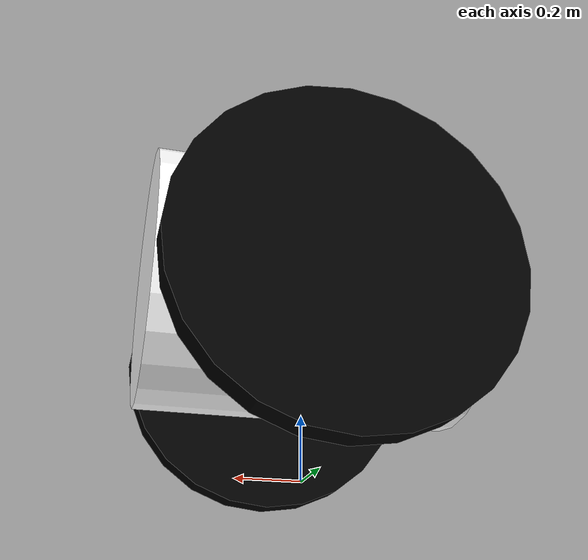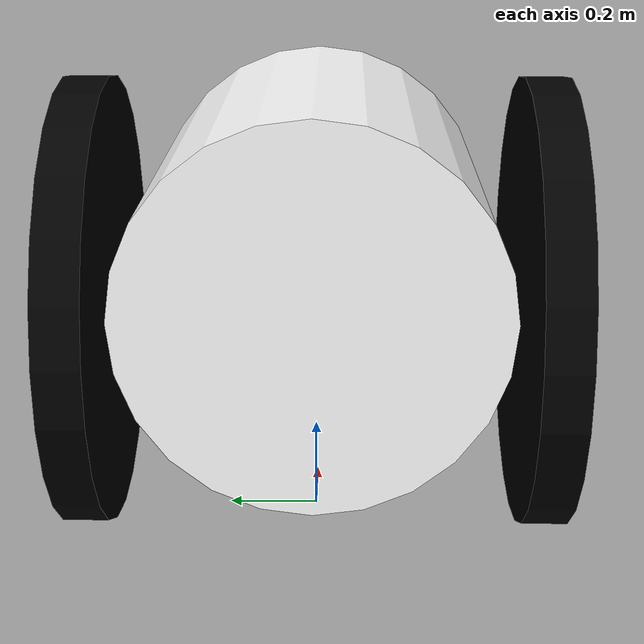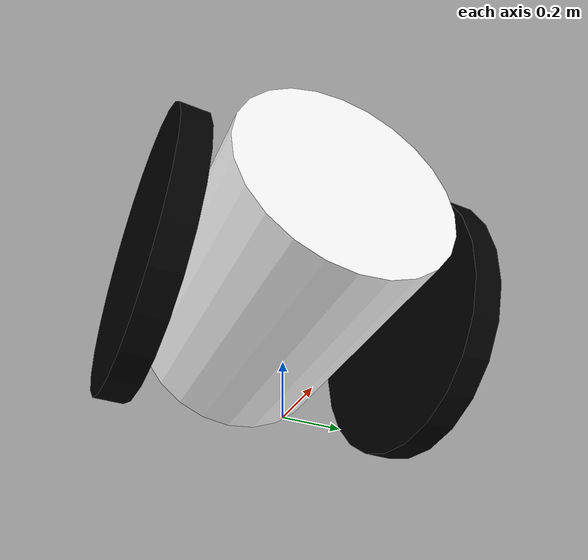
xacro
<?xml version="1.0"?>
<robot name="my_f" xmlns:xacro="http://www.ros.org/wiki/xacro">
  <xacro:property name="width" value="0.4" />       <!-- 로봇 몸통 반지름 -->
  <xacro:property name="length" value="1.0" />      <!-- 로봇 몸통 길이 -->
  <xacro:property name="wheel_length" value="0.1" />      <!-- 로봇 몸통 높이 -->
  <xacro:property name="body_high" value="0.1" />  <!-- 바퀴 지름 -->
  <xacro:property name="wheelrad" value="${body_high+width}" />  <!-- 바퀴 지름 -->

  <material name="blue">
    <color rgba="0 0 0.8 1"/>
  </material>

  <material name="white">
    <color rgba="1 1 1 1"/>
  </material>

  <material name="black">
    <color rgba="0 0 0 1"/>
  </material>
  <xacro:macro name="default_inertial" params="mass">
    <inertial>
      <mass value="${mass}" /> <!-- 입력받은 무게 설정 -->
      <!-- 관성 모멘트 회전 저항값 (시뮬레이션 가속도 계산용 기본값) -->
      <inertia ixx="1e-3" ixy="0.0" ixz="0.0" iyy="1e-3" iyz="0.0" izz="1e-3" />
    </inertial>
  </xacro:macro>
  <xacro:macro name="wheel" params="prefix reflect">
    <joint name="${prefix}_wheel_joint" type="continuous">
      <axis xyz="0 0 ${reflect*1}"/> <!-- 회전 중심축을 Y축(0 1 0)으로 설정 -->
      <parent link="base_link"/>  <!-- 부모: 아래에서 만들 하부 베이스 -->
      <child link="${prefix}_wheel"/> <!-- 자식: 방금 만든 바퀴 링크 -->
      <!-- 부모 기준 바퀴 위치: reflect가 1이면 앞쪽, -1이면 뒤쪽에 배치됨 -->
      <origin xyz="0 ${reflect*(body_high+width)} 0" rpy="${reflect*1.570796} 0 0"/>
    </joint>
  </xacro:macro>
  <link name="base_footprint"/>
  <joint name="base_footprint_to_base_link_joint" type="fixed">
    <parent link="base_footprint"/>
    <child link="base_link"/>
    <origin xyz="0 0 ${wheelrad}" rpy="0 0 0"/>
  </joint>
  <link name="base_link">
    <visual>
      <geometry>
        <cylinder length="${length}" radius="${width}"/>
      </geometry>
      <!-- [오타 수정] 순수 URDF는 글자 pi/2를 연산하지 못하므로 숫자로 변경 (pi/2 -> 1.570796) -->
      <origin xyz="0 0 ${body_high}" rpy="0 1.570796 0"/>
      <material name="white"/>
    </visual>
    <collision>
      <geometry>
        <cylinder length="${length}" radius="${width}"/>
      </geometry>
      <!-- [오타 수정] 순수 URDF는 글자 pi/2를 연산하지 못하므로 숫자로 변경 (pi/2 -> 1.570796) -->
      <origin xyz="0 0 ${body_high}" rpy="0 1.570796 0"/>
    </collision>
    <xacro:default_inertial mass="10"/>
  </link>

  <link name="right_wheel">
    <visual>
      <geometry>
        <cylinder length="${wheel_length}" radius="${wheelrad}"/>
      </geometry>
      <!-- [오타 수정] 글자 pi/2를 숫자로 변경 (pi/2 -> 1.570796) -->
      <origin xyz="0 0 0" rpy="0 0 0"/>
      <material name="black"/>
    </visual>
    <collision>
      <geometry>
        <cylinder length="${wheel_length}" radius="${wheelrad}"/>
      </geometry>
      <!-- [오타 수정] 글자 pi/2를 숫자로 변경 (pi/2 -> 1.570796) -->
      <origin xyz="0 0 0" rpy="0 0 0"/>
    </collision>
    <xacro:default_inertial mass="1"/>
  </link>

  <link name="left_wheel">
    <visual>
      <geometry>
        <cylinder length="${wheel_length}" radius="${wheelrad}"/>
      </geometry>
      <!-- [오타 수정] 글자 -pi/2를 숫자로 변경 (-pi/2 -> -1.570796) -->
      <origin xyz="0 0 0" rpy="0 0 0"/>
      <material name="black"/>
    </visual>
    <collision>
      <geometry>
        <cylinder length="${wheel_length}" radius="${wheelrad}"/>
      </geometry>
      <!-- [오타 수정] 글자 -pi/2를 숫자로 변경 (-pi/2 -> -1.570796) -->
      <origin xyz="0 0 0" rpy="0 0 0"/>
    </collision>
    <xacro:default_inertial mass="1"/>
  </link>
  <xacro:wheel prefix="right" reflect="1"/>
  <xacro:wheel prefix="left" reflect="-1"/>
  <gazebo>
  <plugin name="differential_drive_controller" filename="libgazebo_ros_diff_drive.so">
    <update_rate>30</update_rate>

    <left_joint>left_wheel_joint</left_joint>
    <right_joint>right_wheel_joint</right_joint>

    <wheel_separation>${(body_high + width) * 2}</wheel_separation>
    <wheel_diameter>${wheelrad * 2}</wheel_diameter>
    <max_wheel_torque>20</max_wheel_torque>
    <max_wheel_acceleration>1.0</max_wheel_acceleration>

    <command_topic>cmd_vel</command_topic>
    <odometry_topic>odom</odometry_topic>
    <odometry_frame>odom</odometry_frame>
    <robot_base_frame>base_footprint</robot_base_frame>

    <publish_odom>true</publish_odom>
    <publish_odom_tf>true</publish_odom_tf>
    <publish_wheel_tf>true</publish_wheel_tf>
  </plugin>
</gazebo>

</robot>
